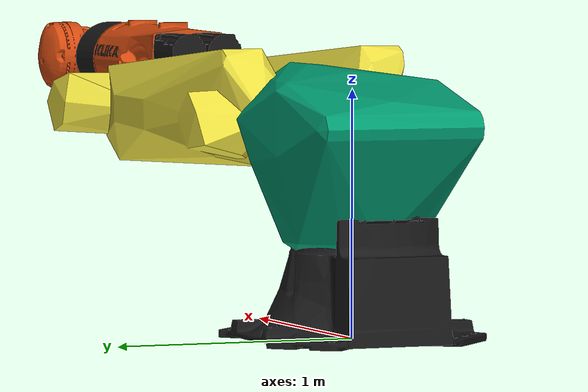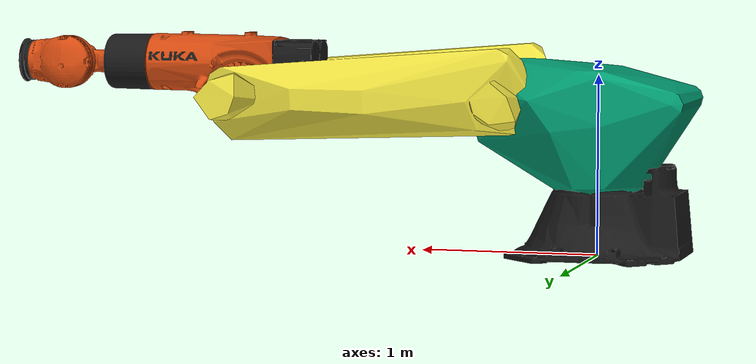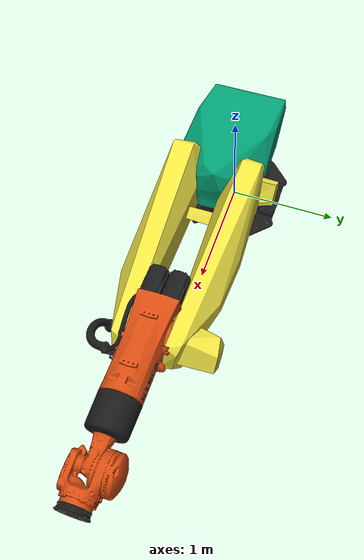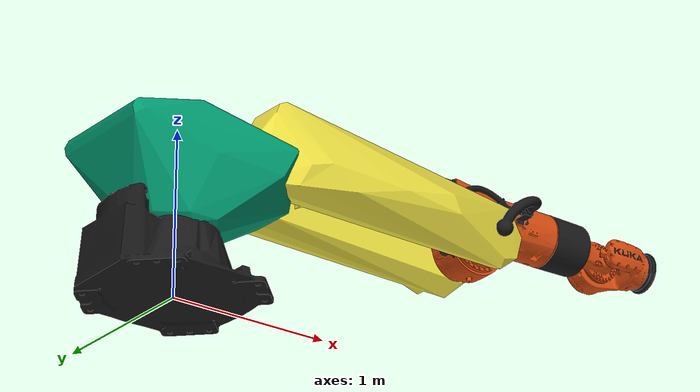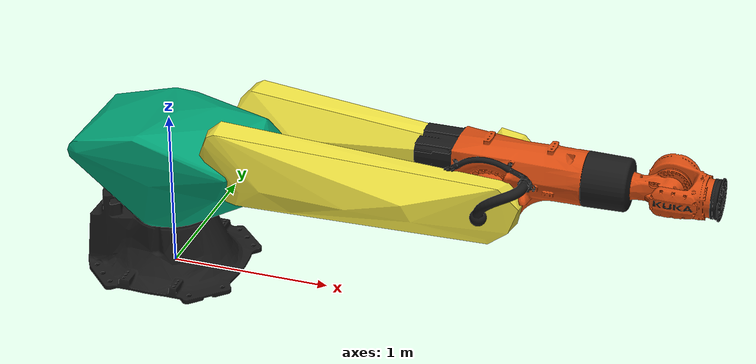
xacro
<?xml version="1.0"?>
<robot xmlns:xacro="http://www.ros.org/wiki/xacro" name="kr560_r3100_2">
  <!-- Import macro files  -->
  <xacro:include filename="$(find kuka_fortec_support)/urdf/kr560_r3100_2_macro.xacro"/>
  <xacro:include filename="$(find kuka_fortec_support)/urdf/kr_fortec_ros2_control_macro.xacro"/>
  <!-- Read additional arguments  -->
  <xacro:arg name="driver_version" default="rsi_only"/>
  <xacro:arg name="mode" default="hardware"/>
  <xacro:arg name="gpio_config" default=""/>
  <xacro:arg name="roundtrip_time" default="0"/>
  <xacro:arg name="client_ip" default="0.0.0.0"/>
  <xacro:arg name="client_port" default="59152"/>
  <xacro:arg name="mxa_client_port" default="1337"/>
  <xacro:arg name="controller_ip" default="0.0.0.0"/>
  <xacro:arg name="verify_robot_model" default="true"/>
  <xacro:arg name="prefix" default=""/>
  <xacro:arg name="x" default="0"/>
  <xacro:arg name="y" default="0"/>
  <xacro:arg name="z" default="0"/>
  <xacro:arg name="roll" default="0"/>
  <xacro:arg name="pitch" default="0"/>
  <xacro:arg name="yaw" default="0"/>
  <xacro:arg name="rsi_xml_config_file" default=""/>
  <xacro:kuka_fortec_ros2_control name="$(arg prefix)kr560_r3100_2" driver_version="$(arg driver_version)" client_ip="$(arg client_ip)" client_port="$(arg client_port)" mxa_client_port="$(arg mxa_client_port)" controller_ip="$(arg controller_ip)" prefix="$(arg prefix)" mode="$(arg mode)" gpio_config="$(arg gpio_config)" roundtrip_time="$(arg roundtrip_time)" verify_robot_model="$(arg verify_robot_model)" rsi_xml_config_file="$(arg rsi_xml_config_file)">
    <ext_axes_ros2_control_joints/>
  </xacro:kuka_fortec_ros2_control>
  <!-- world link -->
  <link name="world"/>
  <!-- robot links, joints -->
  <xacro:kuka_kr560_r3100_2_robot prefix="$(arg prefix)" package_name="kuka_fortec_support"/>
  <!-- default world - base_link joint -->
  <joint name="$(arg prefix)world-base_link" type="fixed">
    <parent link="world"/>
    <child link="$(arg prefix)base_link"/>
    <origin xyz="$(arg x) $(arg y) $(arg z)" rpy="$(arg roll) $(arg pitch) $(arg yaw)"/>
  </joint>
</robot>

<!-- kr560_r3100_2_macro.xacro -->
<robot xmlns:xacro="http://wiki.ros.org/xacro">
  <xacro:macro name="kuka_kr560_r3100_2_robot" params="prefix package_name">
    <!-- links - main serial chain -->
    <link name="${prefix}base_link">
      <collision>
        <geometry>
          <mesh filename="package://${package_name}/meshes/kr560_r3100_2/collision/base_link.stl"/>
        </geometry>
        <origin rpy="-0.0 0.0 -0.0" xyz="0.0 0.0 0.0"/>
      </collision>
      <inertial>
        <inertia ixx="35.410866659826" ixy="0.0" ixz="0.0" iyy="34.5547429413375" iyz="0.0" izz="38.9749152422865"/>
        <mass value="4.3839E2"/>
        <origin rpy="-0.26345077947988915 -0.011417952338033863 -1.5831162104095253" xyz="-0.0219634111179543 2.66337735806023E-4 0.290824658865394"/>
      </inertial>
      <visual>
        <geometry>
          <mesh filename="package://${package_name}/meshes/kr560_r3100_2/visual/base_link.dae"/>
        </geometry>
        <origin rpy="-0.0 0.0 -0.0" xyz="0.0 0.0 0.0"/>
      </visual>
    </link>
    <link name="${prefix}link_1">
      <collision>
        <geometry>
          <mesh filename="package://${package_name}/meshes/kr560_r3100_2/collision/link_1.stl"/>
        </geometry>
        <origin rpy="-0.0 0.0 -0.0" xyz="0.0 0.0 0.0"/>
      </collision>
      <inertial>
        <inertia ixx="68.8871727481765" ixy="0.0" ixz="0.0" iyy="31.9479323362134" iyz="0.0" izz="84.5563373850467"/>
        <mass value="5.5748E2"/>
        <origin rpy="-1.8734135274052497 -1.508489219626719 0.30671025878674923" xyz="0.0812269789050728 0.00860667378201908 -0.29662668257157204"/>
      </inertial>
      <visual>
        <geometry>
          <mesh filename="package://${package_name}/meshes/kr560_r3100_2/visual/link_1.dae"/>
        </geometry>
        <origin rpy="-0.0 0.0 -0.0" xyz="0.0 0.0 0.0"/>
      </visual>
    </link>
    <link name="${prefix}link_2">
      <collision>
        <geometry>
          <mesh filename="package://${package_name}/meshes/kr560_r3100_2/collision/link_2.stl"/>
        </geometry>
        <origin rpy="-0.0 0.0 -0.0" xyz="0.0 0.0 0.0"/>
      </collision>
      <inertial>
        <inertia ixx="344.9055856506" ixy="0.0" ixz="0.0" iyy="45.4306396522043" iyz="0.0" izz="376.577425687136"/>
        <mass value="7.4023E2"/>
        <origin rpy="-1.4188791588206504 -1.5562308152773727 3.0008589795117246" xyz="0.673327322588925 -0.006679975683233591 0.022081825378598603"/>
      </inertial>
      <visual>
        <geometry>
          <mesh filename="package://${package_name}/meshes/kr560_r3100_2/visual/link_2.dae"/>
        </geometry>
        <origin rpy="-0.0 0.0 -0.0" xyz="0.0 0.0 0.0"/>
      </visual>
    </link>
    <link name="${prefix}link_3">
      <collision>
        <geometry>
          <mesh filename="package://${package_name}/meshes/kr560_r3100_2/collision/link_3.stl"/>
        </geometry>
        <origin rpy="-0.0 0.0 -0.0" xyz="0.0 0.0 0.0"/>
      </collision>
      <inertial>
        <inertia ixx="6.30840213271945" ixy="0.0" ixz="0.0" iyy="26.687628198328" iyz="0.0" izz="29.5636589044743"/>
        <mass value="2.41307E2"/>
        <origin rpy="0.028058985026686887 -0.003311222914120114 -0.07508596727782266" xyz="0.129307355539367 -0.12237728273757201 -0.005238577401690441"/>
      </inertial>
      <visual>
        <geometry>
          <mesh filename="package://${package_name}/meshes/kr560_r3100_2/visual/link_3.dae"/>
        </geometry>
        <origin rpy="-0.0 0.0 -0.0" xyz="0.0 0.0 0.0"/>
      </visual>
    </link>
    <link name="${prefix}link_4">
      <collision>
        <geometry>
          <mesh filename="package://${package_name}/meshes/kr560_r3100_2/collision/link_4.stl"/>
        </geometry>
        <origin rpy="-0.0 0.0 -0.0" xyz="0.0 0.0 0.0"/>
      </collision>
      <inertial>
        <inertia ixx="0.693678008600892" ixy="0.0" ixz="0.0" iyy="2.78506557610754" iyz="0.0" izz="2.86251005408283"/>
        <mass value="9.7442E1"/>
        <origin rpy="1.570932272091058 -1.2743253802401948 -1.570766714386286" xyz="-5.43869794830743E-7 0.042293334372276704 -0.18193497897866"/>
      </inertial>
      <visual>
        <geometry>
          <mesh filename="package://${package_name}/meshes/kr560_r3100_2/visual/link_4.dae"/>
        </geometry>
        <origin rpy="-0.0 0.0 -0.0" xyz="0.0 0.0 0.0"/>
      </visual>
    </link>
    <link name="${prefix}link_5">
      <collision>
        <geometry>
          <mesh filename="package://${package_name}/meshes/kr560_r3100_2/collision/link_5.stl"/>
        </geometry>
        <origin rpy="-0.0 0.0 -0.0" xyz="0.0 0.0 0.0"/>
      </collision>
      <inertial>
        <inertia ixx="1.10203832546012" ixy="0.0" ixz="0.0" iyy="0.783938692397306" iyz="0.0" izz="1.20828474699799"/>
        <mass value="5.36088E1"/>
        <origin rpy="-1.5642278602027897 -0.8175710147649964 -0.011709797778755686" xyz="0.06813413576091991 -4.9894728477414005E-5 -0.0893390051226664"/>
      </inertial>
      <visual>
        <geometry>
          <mesh filename="package://${package_name}/meshes/kr560_r3100_2/visual/link_5.dae"/>
        </geometry>
        <origin rpy="-0.0 0.0 -0.0" xyz="0.0 0.0 0.0"/>
      </visual>
    </link>
    <link name="${prefix}link_6">
      <collision>
        <geometry>
          <mesh filename="package://${package_name}/meshes/kr560_r3100_2/collision/link_6.stl"/>
        </geometry>
        <origin rpy="-0.0 0.0 -0.0" xyz="0.0 0.0 0.0"/>
      </collision>
      <inertial>
        <inertia ixx="0.154627253223927" ixy="0.0" ixz="0.0" iyy="0.154759872890913" iyz="0.0" izz="0.18961138268388"/>
        <mass value="3.202E1"/>
        <origin rpy="0.0020471651340902924 7.476904024900575E-5 -1.5692303732486164" xyz="-4.86570893191755E-5 -2.5301686445971304E-6 -0.0203013397876327"/>
      </inertial>
      <visual>
        <geometry>
          <mesh filename="package://${package_name}/meshes/kr560_r3100_2/visual/link_6.dae"/>
        </geometry>
        <origin rpy="-0.0 0.0 -0.0" xyz="0.0 0.0 0.0"/>
      </visual>
    </link>
    <joint name="${prefix}joint_1" type="revolute">
      <axis xyz="0.0 0.0 1.0"/>
      <child link="${prefix}link_1"/>
      <limit effort="15000.0E0" lower="-3.2288591161895095E0" upper="3.2288591161895095E0" velocity="${radians(90)}"/>
      <origin rpy="-3.141592653589793 0.0 -0.0" xyz="0.0 0.0 0.0"/>
      <parent link="${prefix}base_link"/>
    </joint>
    <joint name="${prefix}joint_2" type="revolute">
      <axis xyz="0.0 0.0 1.0"/>
      <child link="${prefix}link_2"/>
      <limit effort="17880.0E0" lower="-2.2689280275926285E0" upper="3.490658503988659E-1" velocity="${radians(80)}"/>
      <origin rpy="${pi/2.0} 0.0 -0.0" xyz="0.5 0.0 -0.86"/>
      <parent link="${prefix}link_1"/>
    </joint>
    <joint name="${prefix}joint_3" type="revolute">
      <axis xyz="0.0 0.0 1.0"/>
      <child link="${prefix}link_3"/>
      <limit effort="15315.272850848E0" lower="-1.7453292519943295E0" upper="2.8797932657906435E0" velocity="${radians(75)}"/>
      <origin rpy="0.0 0.0 -${pi/2.0}" xyz="1.55 0.0 0.0"/>
      <parent link="${prefix}link_2"/>
    </joint>
    <joint name="${prefix}joint_4" type="revolute">
      <axis xyz="0.0 0.0 1.0"/>
      <child link="${prefix}link_4"/>
      <limit effort="4847.11596436905E0" lower="-6.1086523819801535E0" upper="6.1086523819801535E0" velocity="${radians(90)}"/>
      <origin rpy="${pi/2.0} 0.0 -0.0" xyz="0.18 0.0 0.0"/>
      <parent link="${prefix}link_3"/>
    </joint>
    <joint name="${prefix}joint_5" type="revolute">
      <axis xyz="0.0 0.0 1.0"/>
      <child link="${prefix}link_5"/>
      <limit effort="4852.96953685247E0" lower="-2.0943951023931953E0" upper="2.0943951023931953E0" velocity="${radians(90)}"/>
      <origin rpy="-${pi/2.0} 0.0 -0.0" xyz="0.0 0.0 -1.0345"/>
      <parent link="${prefix}link_4"/>
    </joint>
    <joint name="${prefix}joint_6" type="revolute">
      <axis xyz="0.0 0.0 1.0"/>
      <child link="${prefix}link_6"/>
      <limit effort="2675.4449432041E0" lower="-6.1086523819801535E0" upper="6.1086523819801535E0" velocity="${radians(130)}"/>
      <origin rpy="${pi/2.0} 0.0 -0.0" xyz="0.0 0.0 0.0"/>
      <parent link="${prefix}link_5"/>
    </joint>
    <!-- ROS-Industrial 'base' frame - equivalent of 'KUKA ROBROOT'-->
    <link name="${prefix}base"/>
    <joint name="${prefix}base_link-base" type="fixed">
      <origin xyz="0 0 0" rpy="0 0 0"/>
      <parent link="${prefix}base_link"/>
      <child link="${prefix}base"/>
    </joint>
    <!-- ROS-Industrial 'flange' frame - attachment point for EEF models -->
    <link name="${prefix}flange"/>
    <joint name="${prefix}link6-flange" type="fixed">
      <child link="${prefix}flange"/>
      <origin rpy="0 ${pi/2} -0.0" xyz="0.0 0.0 -0.305"/>
      <parent link="${prefix}link_6"/>
    </joint>
    <!-- ROS-Industrial 'tool0' frame - all-zeros tool frame -->
    <link name="${prefix}tool0"/>
    <joint name="${prefix}link6-tool0" type="fixed">
      <child link="${prefix}tool0"/>
      <origin rpy="0 ${pi} -0.0" xyz="0.0 0.0 -0.305"/>
      <parent link="${prefix}link_6"/>
    </joint>
  </xacro:macro>
</robot>
